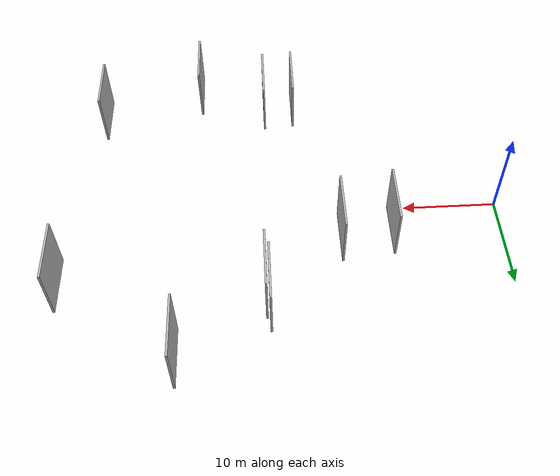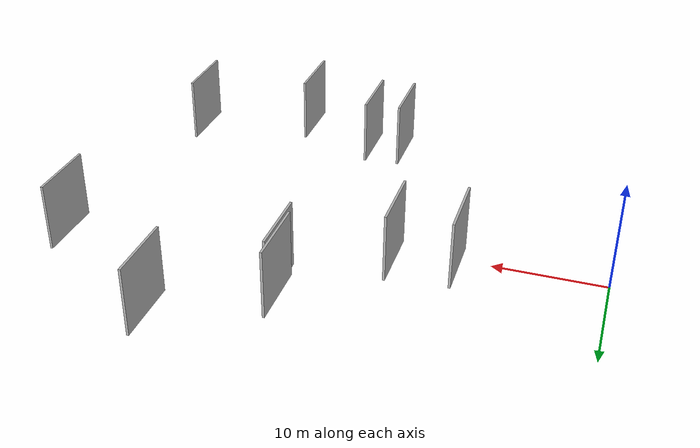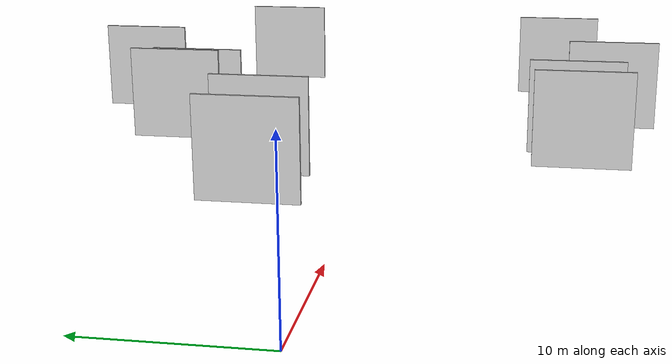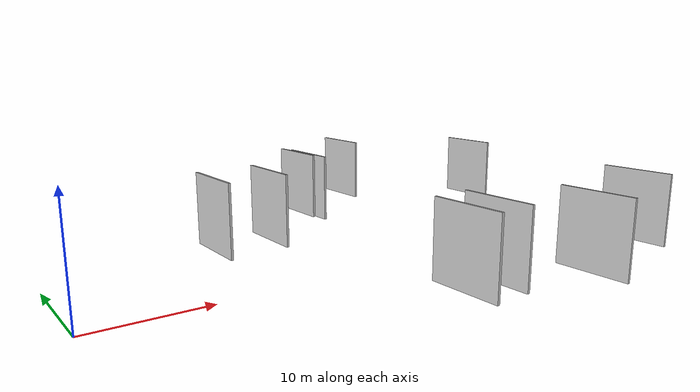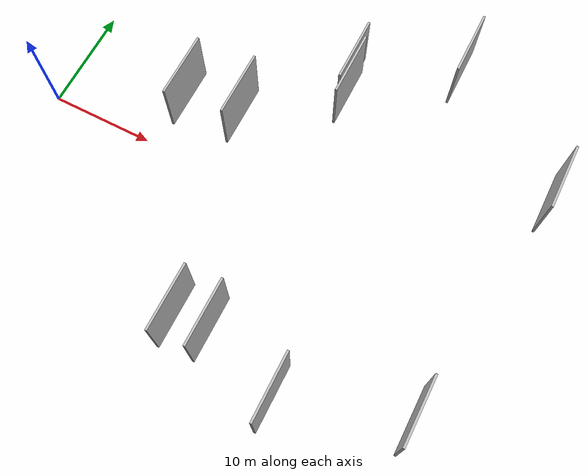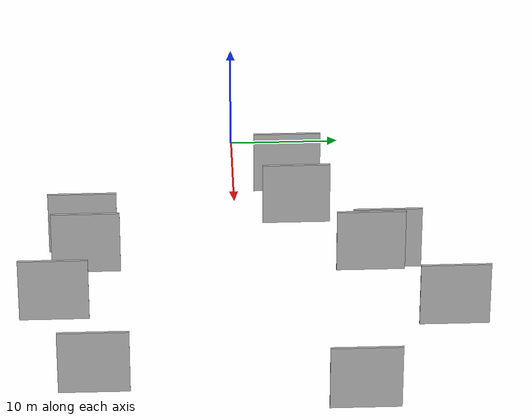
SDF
<sdf version="1.6">
 <world name="default">
  <scene>
   <sky><clouds><speed>12</speed></clouds></sky>
   <ambient>0.4 0.4 0.4 1</ambient>
   <background>0.7 0.7 0.7 1</background>
   <shadows>1</shadows>
  </scene>
  <gravity>0 0 -9.8066</gravity>
  <magnetic_field>6e-06 2.3e-05 -4.2e-05</magnetic_field>
  <physics default="0" name="default_physics" type="ode">
   <ode>
    <solver>
     <type>quick</type>
     <iters>10</iters>
     <sor>1.0</sor>
     <use_dynamic_moi_rescaling>0</use_dynamic_moi_rescaling>
    </solver>
    <constraints>
     <cfm>0</cfm>
     <erp>0.2</erp>
     <contact_max_correcting_vel>100</contact_max_correcting_vel>
     <contact_surface_layer>0.001</contact_surface_layer>
    </constraints>
   </ode>
   <max_step_size>0.004</max_step_size>
   <real_time_factor>1</real_time_factor>
   <real_time_update_rate>250</real_time_update_rate>
  </physics>
  <light name="sun" type="directional">
   <pose>0 0 10 0 0 0</pose>
   <diffuse>0.8 0.8 0.8 1</diffuse>
   <specular>0.2 0.2 0.2 1</specular>
   <attenuation>
    <range>1000</range>
    <constant>0.9</constant>
    <linear>0.01</linear>
    <quadratic>0.001</quadratic>
   </attenuation>
   <direction>-0.5 0.1 -0.9</direction>
  </light>
  <model name="grey_wall_1">
   <static>1</static>
   <pose>33.6331 18.1025 2.5 0.000000 0.000000 1.570796</pose>
   <link name="link">
    <pose>0 0 3.00 0 0 0</pose>
    <collision name="collision"><geometry><box><size>6.00 0.2 6.00</size></box></geometry></collision>
    <visual name="visual">
     <cast_shadows>0</cast_shadows>
     <geometry><box><size>6.00 0.2 6.00</size></box></geometry>
     <material>
      <script>
       <uri>model://HANNAS_wall/materials/scripts</uri>
       <uri>model://HANNAS_wall/materials/textures</uri>
       <name>vrc/HANNAS_wall</name>
      </script>
     </material>
    </visual>
   </link>
  </model>
  <model name="grey_wall_2">
   <static>1</static>
   <pose>42.3609 -12.6929 2.5 0.000000 0.000000 1.570796</pose>
   <link name="link">
    <pose>0 0 3.00 0 0 0</pose>
    <collision name="collision"><geometry><box><size>6.00 0.2 6.00</size></box></geometry></collision>
    <visual name="visual">
     <cast_shadows>0</cast_shadows>
     <geometry><box><size>6.00 0.2 6.00</size></box></geometry>
     <material>
      <script>
       <uri>model://HANNAS_wall/materials/scripts</uri>
       <uri>model://HANNAS_wall/materials/textures</uri>
       <name>vrc/HANNAS_wall</name>
      </script>
     </material>
    </visual>
   </link>
  </model>
  <model name="grey_wall_3">
   <static>1</static>
   <pose>31.7466 -16.1390 2.5 0.000000 0.000000 1.570796</pose>
   <link name="link">
    <pose>0 0 3.00 0 0 0</pose>
    <collision name="collision"><geometry><box><size>6.00 0.2 6.00</size></box></geometry></collision>
    <visual name="visual">
     <cast_shadows>0</cast_shadows>
     <geometry><box><size>6.00 0.2 6.00</size></box></geometry>
     <material>
      <script>
       <uri>model://HANNAS_wall/materials/scripts</uri>
       <uri>model://HANNAS_wall/materials/textures</uri>
       <name>vrc/HANNAS_wall</name>
      </script>
     </material>
    </visual>
   </link>
  </model>
  <model name="grey_wall_4">
   <static>1</static>
   <pose>45.3198 9.7476 2.5 0.000000 0.000000 1.570796</pose>
   <link name="link">
    <pose>0 0 3.00 0 0 0</pose>
    <collision name="collision"><geometry><box><size>6.00 0.2 6.00</size></box></geometry></collision>
    <visual name="visual">
     <cast_shadows>0</cast_shadows>
     <geometry><box><size>6.00 0.2 6.00</size></box></geometry>
     <material>
      <script>
       <uri>model://HANNAS_wall/materials/scripts</uri>
       <uri>model://HANNAS_wall/materials/textures</uri>
       <name>vrc/HANNAS_wall</name>
      </script>
     </material>
    </visual>
   </link>
  </model>
  <model name="grey_wall_5">
   <static>1</static>
   <pose>12.1744 4.6956 2.5 0.000000 0.000000 1.570796</pose>
   <link name="link">
    <pose>0 0 3.00 0 0 0</pose>
    <collision name="collision"><geometry><box><size>6.00 0.2 6.00</size></box></geometry></collision>
    <visual name="visual">
     <cast_shadows>0</cast_shadows>
     <geometry><box><size>6.00 0.2 6.00</size></box></geometry>
     <material>
      <script>
       <uri>model://HANNAS_wall/materials/scripts</uri>
       <uri>model://HANNAS_wall/materials/textures</uri>
       <name>vrc/HANNAS_wall</name>
      </script>
     </material>
    </visual>
   </link>
  </model>
  <model name="grey_wall_6">
   <static>1</static>
   <pose>17.4307 5.3043 2.5 0.000000 0.000000 1.570796</pose>
   <link name="link">
    <pose>0 0 3.00 0 0 0</pose>
    <collision name="collision"><geometry><box><size>6.00 0.2 6.00</size></box></geometry></collision>
    <visual name="visual">
     <cast_shadows>0</cast_shadows>
     <geometry><box><size>6.00 0.2 6.00</size></box></geometry>
     <material>
      <script>
       <uri>model://HANNAS_wall/materials/scripts</uri>
       <uri>model://HANNAS_wall/materials/textures</uri>
       <name>vrc/HANNAS_wall</name>
      </script>
     </material>
    </visual>
   </link>
  </model>
  <model name="grey_wall_7">
   <static>1</static>
   <pose>25.1775 11.4767 2.5 0.000000 0.000000 1.570796</pose>
   <link name="link">
    <pose>0 0 3.00 0 0 0</pose>
    <collision name="collision"><geometry><box><size>6.00 0.2 6.00</size></box></geometry></collision>
    <visual name="visual">
     <cast_shadows>0</cast_shadows>
     <geometry><box><size>6.00 0.2 6.00</size></box></geometry>
     <material>
      <script>
       <uri>model://HANNAS_wall/materials/scripts</uri>
       <uri>model://HANNAS_wall/materials/textures</uri>
       <name>vrc/HANNAS_wall</name>
      </script>
     </material>
    </visual>
   </link>
  </model>
  <model name="grey_wall_8">
   <static>1</static>
   <pose>24.6122 -13.4186 2.5 0.000000 0.000000 1.570796</pose>
   <link name="link">
    <pose>0 0 3.00 0 0 0</pose>
    <collision name="collision"><geometry><box><size>6.00 0.2 6.00</size></box></geometry></collision>
    <visual name="visual">
     <cast_shadows>0</cast_shadows>
     <geometry><box><size>6.00 0.2 6.00</size></box></geometry>
     <material>
      <script>
       <uri>model://HANNAS_wall/materials/scripts</uri>
       <uri>model://HANNAS_wall/materials/textures</uri>
       <name>vrc/HANNAS_wall</name>
      </script>
     </material>
    </visual>
   </link>
  </model>
  <model name="grey_wall_9">
   <static>1</static>
   <pose>24.8209 12.9125 2.5 0.000000 0.000000 1.570796</pose>
   <link name="link">
    <pose>0 0 3.00 0 0 0</pose>
    <collision name="collision"><geometry><box><size>6.00 0.2 6.00</size></box></geometry></collision>
    <visual name="visual">
     <cast_shadows>0</cast_shadows>
     <geometry><box><size>6.00 0.2 6.00</size></box></geometry>
     <material>
      <script>
       <uri>model://HANNAS_wall/materials/scripts</uri>
       <uri>model://HANNAS_wall/materials/textures</uri>
       <name>vrc/HANNAS_wall</name>
      </script>
     </material>
    </visual>
   </link>
  </model>
  <model name="grey_wall_10">
   <static>1</static>
   <pose>21.4392 -13.6926 2.5 0.000000 0.000000 1.570796</pose>
   <link name="link">
    <pose>0 0 3.00 0 0 0</pose>
    <collision name="collision"><geometry><box><size>6.00 0.2 6.00</size></box></geometry></collision>
    <visual name="visual">
     <cast_shadows>0</cast_shadows>
     <geometry><box><size>6.00 0.2 6.00</size></box></geometry>
     <material>
      <script>
       <uri>model://HANNAS_wall/materials/scripts</uri>
       <uri>model://HANNAS_wall/materials/textures</uri>
       <name>vrc/HANNAS_wall</name>
      </script>
     </material>
    </visual>
   </link>
  </model>
 </world>
</sdf>
